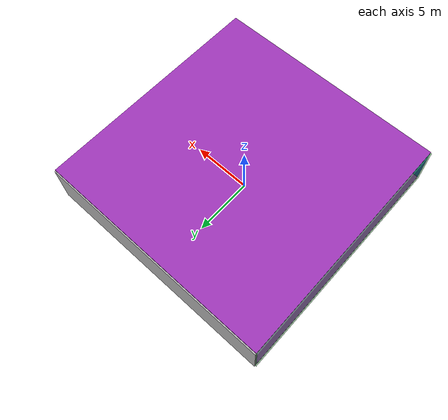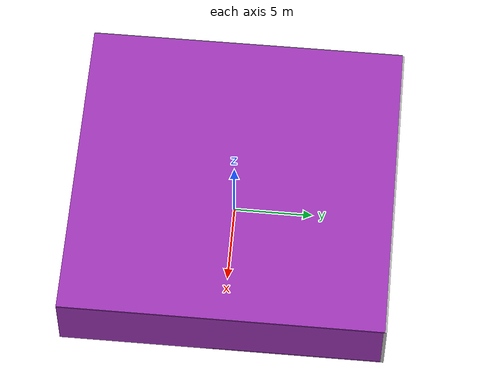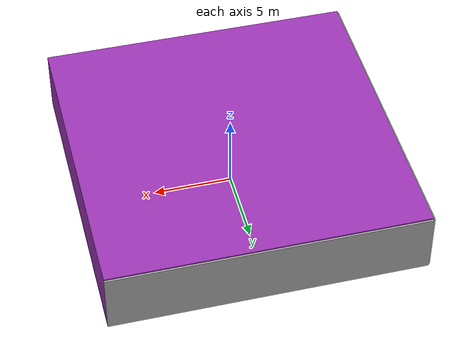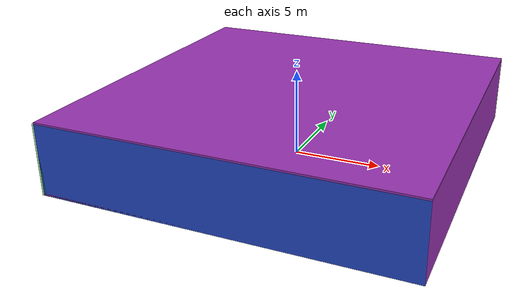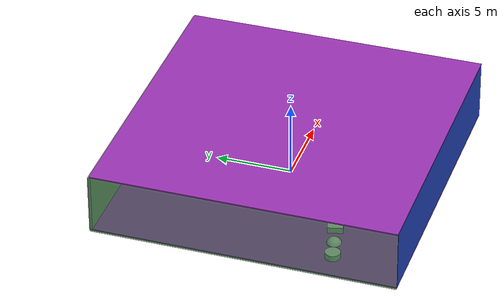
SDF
<sdf version="1.4">
 <world name="default">
  <physics type="ode">
   <max_step_size>0.001</max_step_size>
   <real_time_factor>1</real_time_factor>
   <real_time_update_rate>1000</real_time_update_rate>
   <gravity>0 0 -9.8</gravity>
  </physics>
  <scene><ambient>0.4 0.4 0.4 1</ambient><background>0.7 0.7 0.7 1</background><shadows>1</shadows></scene>
  <model name="Surrounding">
   <static>1</static>
   <link name="Ceiling">
    <collision name="Ceiling_Collision"><geometry><box><size>20 20 0.1</size></box></geometry></collision>
    <visual name="Ceiling_Visual">
     <geometry><box><size>20 20 0.1</size></box></geometry>
     <material>
      <script><uri>file://media/materials/scripts/gazebo.material</uri><name>Gazebo/PurpleGlow</name></script>
     </material>
    </visual>
    <pose>0 0 4.05 0 0 0</pose>
   </link>
   <link name="Wall_South">
    <collision name="Wall_South_Collision">
     <geometry><box><size>20 0 4</size></box></geometry>
     <pose>0 0 2 0 -0 0</pose>
    </collision>
    <visual name="Wall_South_Visual">
     <pose>0 0 2 0 -0 0</pose>
     <geometry><box><size>20 0 4</size></box></geometry>
     <material>
      <script><uri>file://media/materials/scripts/gazebo.material</uri><name>Gazebo/BlueGlow</name></script>
     </material>
    </visual>
    <velocity_decay><linear>0</linear><angular>0</angular></velocity_decay>
    <pose>0 -10 0 0 -0 0</pose>
   </link>
   <link name="Wall_East">
    <collision name="Wall_21_Collision">
     <geometry><box><size>20 0 4</size></box></geometry>
     <pose>0 0 2 0 -0 0</pose>
    </collision>
    <visual name="Wall_21_Visual">
     <pose>0 0 2 0 -0 0</pose>
     <geometry><box><size>20 0 4</size></box></geometry>
     <material>
      <script><uri>file://media/materials/scripts/gazebo.material</uri><name>Gazebo/PurpleGlow</name></script>
     </material>
    </visual>
    <velocity_decay><linear>0</linear><angular>0</angular></velocity_decay>
    <pose>10 0 0 0 -0 1.5708</pose>
   </link>
   <link name="Wall_North">
    <collision name="Wall_22_Collision">
     <geometry><box><size>20 0.2 4</size></box></geometry>
     <pose>0 0 2 0 -0 0</pose>
    </collision>
    <visual name="Wall_22_Visual">
     <pose>0 0 2 0 -0 0</pose>
     <geometry><box><size>20 0.2 4</size></box></geometry>
     <material>
      <script><uri>file://media/materials/scripts/gazebo.material</uri><name>Gazebo/Pioneer2Body</name></script>
     </material>
    </visual>
    <velocity_decay><linear>0</linear><angular>0</angular></velocity_decay>
    <pose>0 10 0 0 -0 0</pose>
   </link>
   <link name="Wall_West">
    <collision name="Wall_23_Collision">
     <geometry><box><size>20 0.2 4</size></box></geometry>
     <pose>0 0 2 0 -0 0</pose>
    </collision>
    <visual name="Wall_23_Visual">
     <pose>0 0 2 0 -0 0</pose>
     <geometry><box><size>20 0.2 4</size></box></geometry>
     <material>
      <script><uri>file://media/materials/scripts/gazebo.material</uri><name>Gazebo/GreenTransparent</name></script>
     </material>
    </visual>
    <velocity_decay><linear>0</linear><angular>0</angular></velocity_decay>
    <pose>-10 0 0 0 0 -1.5708</pose>
   </link>
   <link name="Ground_link">
    <collision name="collision">
     <pose>0 0 .05 0 -0 0</pose>
     <geometry><box><size>20 20 0.1</size></box></geometry>
    </collision>
    <visual name="visual">
     <pose>0 0 .05 0 -0 0</pose>
     <geometry><box><size>20 20 0.1</size></box></geometry>
     <material>
      <script><uri>file://media/materials/scripts/gazebo.material</uri><name>Gazebo/PurpleGlow</name></script>
     </material>
    </visual>
   </link>
   <static>1</static>
  </model>
  <spherical_coordinates>
   <surface_model>EARTH_WGS84</surface_model>
   <latitude_deg>0</latitude_deg>
   <longitude_deg>0</longitude_deg>
   <elevation>0</elevation>
   <heading_deg>0</heading_deg>
  </spherical_coordinates>
  <light name="lightball_0" type="diffuse">
   <diffuse>0.8 0.8 0.8 1</diffuse>
   <specular>0.2 0.2 0.2 1</specular>
   <attenuation>
    <range>100</range>
    <constant>0.7</constant>
    <linear>0.01</linear>
    <quadratic>0.001</quadratic>
   </attenuation>
   <direction>-0.5 0.1 -0.9</direction>
   <pose>3.39816971077 6.62879764587 3.37423313138 0 0 0</pose>
  </light>
  <light name="lightball_1" type="diffuse">
   <diffuse>0.8 0.8 0.8 1</diffuse>
   <specular>0.2 0.2 0.2 1</specular>
   <attenuation>
    <range>100</range>
    <constant>0.7</constant>
    <linear>0.01</linear>
    <quadratic>0.001</quadratic>
   </attenuation>
   <direction>-0.5 0.1 -0.9</direction>
   <pose>3.62670236934 9.78263735048 1.03354704247 0 0 0</pose>
  </light>
  <light name="lightball_2" type="diffuse">
   <diffuse>0.8 0.8 0.8 1</diffuse>
   <specular>0.2 0.2 0.2 1</specular>
   <attenuation>
    <range>100</range>
    <constant>0.7</constant>
    <linear>0.01</linear>
    <quadratic>0.001</quadratic>
   </attenuation>
   <direction>-0.5 0.1 -0.9</direction>
   <pose>-4.76333276732 3.5151038282 1.44666014286 0 0 0</pose>
  </light>
  <light name="lightball_3" type="diffuse">
   <diffuse>0.8 0.8 0.8 1</diffuse>
   <specular>0.2 0.2 0.2 1</specular>
   <attenuation>
    <range>100</range>
    <constant>0.7</constant>
    <linear>0.01</linear>
    <quadratic>0.001</quadratic>
   </attenuation>
   <direction>-0.5 0.1 -0.9</direction>
   <pose>-5.82371461147 2.07297502192 3.4053982732 0 0 0</pose>
  </light>
  <light name="lightball_4" type="diffuse">
   <diffuse>0.8 0.8 0.8 1</diffuse>
   <specular>0.2 0.2 0.2 1</specular>
   <attenuation>
    <range>100</range>
    <constant>0.7</constant>
    <linear>0.01</linear>
    <quadratic>0.001</quadratic>
   </attenuation>
   <direction>-0.5 0.1 -0.9</direction>
   <pose>7.63584428005 6.24169460152 1.91699740143 0 0 0</pose>
  </light>
  <light name="lightball_5" type="diffuse">
   <diffuse>0.8 0.8 0.8 1</diffuse>
   <specular>0.2 0.2 0.2 1</specular>
   <attenuation>
    <range>100</range>
    <constant>0.7</constant>
    <linear>0.01</linear>
    <quadratic>0.001</quadratic>
   </attenuation>
   <direction>-0.5 0.1 -0.9</direction>
   <pose>8.39422913287 -4.25157544856 0.987206766725 0 0 0</pose>
  </light>
  <light name="lightball_6" type="diffuse">
   <diffuse>0.8 0.8 0.8 1</diffuse>
   <specular>0.2 0.2 0.2 1</specular>
   <attenuation>
    <range>100</range>
    <constant>0.7</constant>
    <linear>0.01</linear>
    <quadratic>0.001</quadratic>
   </attenuation>
   <direction>-0.5 0.1 -0.9</direction>
   <pose>-8.91069725163 0.055258405951 3.21296093379 0 0 0</pose>
  </light>
  <light name="lightball_7" type="diffuse">
   <diffuse>0.8 0.8 0.8 1</diffuse>
   <specular>0.2 0.2 0.2 1</specular>
   <attenuation>
    <range>100</range>
    <constant>0.7</constant>
    <linear>0.01</linear>
    <quadratic>0.001</quadratic>
   </attenuation>
   <direction>-0.5 0.1 -0.9</direction>
   <pose>-1.86693883021 -0.66016079264 2.00288445191 0 0 0</pose>
  </light>
  <light name="lightball_8" type="diffuse">
   <diffuse>0.8 0.8 0.8 1</diffuse>
   <specular>0.2 0.2 0.2 1</specular>
   <attenuation>
    <range>100</range>
    <constant>0.7</constant>
    <linear>0.01</linear>
    <quadratic>0.001</quadratic>
   </attenuation>
   <direction>-0.5 0.1 -0.9</direction>
   <pose>-6.6857715436 -6.60720659338 1.18715191252 0 0 0</pose>
  </light>
  <light name="lightball_9" type="diffuse">
   <diffuse>0.8 0.8 0.8 1</diffuse>
   <specular>0.2 0.2 0.2 1</specular>
   <attenuation>
    <range>100</range>
    <constant>0.7</constant>
    <linear>0.01</linear>
    <quadratic>0.001</quadratic>
   </attenuation>
   <direction>-0.5 0.1 -0.9</direction>
   <pose>-0.0824805673546 4.22698929851 1.20969822959 0 0 0</pose>
  </light>
  <light name="lightball_10" type="diffuse">
   <diffuse>0.8 0.8 0.8 1</diffuse>
   <specular>0.2 0.2 0.2 1</specular>
   <attenuation>
    <range>100</range>
    <constant>0.7</constant>
    <linear>0.01</linear>
    <quadratic>0.001</quadratic>
   </attenuation>
   <direction>-0.5 0.1 -0.9</direction>
   <pose>-2.53625719238 6.65758410456 2.39125390934 0 0 0</pose>
  </light>
  <include>
   <uri>model://textured_shapes</uri>
   <pose>-6.73656833621 -4.99456436746 0 0 0 1.80802996745</pose>
  </include>
  <include><uri>model://cabinet</uri><pose>-1.31766490494 1.21490729724 0 0 0 1.64119800387</pose></include>
  <include>
   <uri>model://textured_shapes</uri>
   <pose>1.71890238379 7.48741593411 0 0 0 0.61077560707</pose>
  </include>
 </world>
</sdf>

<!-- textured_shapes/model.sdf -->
<sdf version="1.6">
  <model name="textured_shapes">
    <pose>0 0 0.5 0 0 0</pose>
    <link name="box">
      <pose>0 -1.5 0 0 0 0</pose>
      <collision name="collision">
        <geometry>
          <box>
            <size>1 1 1</size>
          </box>
        </geometry>
      </collision>
      <visual name="visual">
        <geometry>
          <box>
            <size>1 1 1</size>
          </box>
        </geometry>
        <material>
          <script>
            <uri>model://../model_source/models/textured_shapes/materials/scripts</uri>
            <uri>model://../model_source/models/textured_shapes/materials/textures</uri>
            <name>TexturedShape/Squares</name>
          </script>
        </material>
      </visual>
    </link>
    <link name="sphere">
      <collision name="collision">
        <geometry>
          <sphere>
            <radius>0.5</radius>
          </sphere>
        </geometry>
      </collision>
      <visual name="visual">
        <geometry>
          <sphere>
            <radius>0.5</radius>
          </sphere>
        </geometry>
        <material>
          <script>
            <uri>model://../model_source/models/textured_shapes/materials/scripts</uri>
            <uri>model://../model_source/models/textured_shapes/materials/textures</uri>
            <name>TexturedShape/Squares</name>
          </script>
        </material>
      </visual>
    </link>
    <link name="cylinder">
      <pose>0 1.5 0 0 0 0</pose>
      <collision name="collision">
        <geometry>
          <cylinder>
            <radius>0.5</radius>
            <length>1</length>
          </cylinder>
        </geometry>
      </collision>
      <visual name="visual">
        <geometry>
          <cylinder>
            <radius>0.5</radius>
            <length>1</length>
          </cylinder>
        </geometry>
        <material>
          <script>
            <uri>model://../model_source/models/textured_shapes/materials/scripts</uri>
            <uri>model://../model_source/models/textured_shapes/materials/textures</uri>
            <name>TexturedShape/Squares</name>
          </script>
        </material>
      </visual>
    </link>
  </model>
</sdf>

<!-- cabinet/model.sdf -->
<sdf version="1.5">
  <model name="cabinet">
    <static>true</static>
    <link name="cabinet_bottom_plate">
      <inertial>
        <pose>0 0 -1 0 0 0</pose>
        <inertia>
          <ixx>2.050000</ixx>
          <ixy>0</ixy>
          <ixz>0</ixz>
          <iyy>2.050000</iyy>
          <iyz>0</iyz>
          <izz>2.050000</izz>
        </inertia>
        <mass>25.000000</mass>
      </inertial>
      <collision name="cabinet_bottom_plate_geom">
        <pose>0 0 0.010000 0 0 0</pose>
        <geometry>
          <box>
            <size>0.450000 0.450000 0.020000</size>
          </box>
        </geometry>
      </collision>
      <visual name="cabinet_bottom_plate_geom_visual">
        <pose>0 0 0.010000 0 0 0</pose>
        <geometry>
          <box>
            <size>0.450000 0.450000 0.020000</size>
          </box>
        </geometry>
        <material>
          <script>
            <uri>model://media/materials/scripts/gazebo.material</uri>
            <name>Gazebo/Wood</name>
          </script>
        </material>
      </visual>
      <collision name="cabinet_bottom_plate_geom_cabinet_back_plate">
        <pose>0.235000 0 0.510000 0 0 0</pose>
        <geometry>
          <box>
            <size>0.020000 0.450000 1.020000</size>
          </box>
        </geometry>
      </collision>
      <visual name="cabinet_bottom_plate_geom_cabinet_back_plate_visual">
        <pose>0.235000 0 0.510000 0 0 0</pose>
        <geometry>
          <box>
            <size>0.020000 0.450000 1.020000</size>
          </box>
        </geometry>
        <material>
          <script>
            <uri>model://media/materials/scripts/gazebo.material</uri>
            <name>Gazebo/Wood</name>
          </script>
        </material>
      </visual>
      <collision name="cabinet_bottom_plate_geom_cabinet_left_plate">
        <pose>0 0.235000 0.510000 0 0 0</pose>
        <geometry>
          <box>
            <size>0.450000 0.020000 1.020000</size>
          </box>
        </geometry>
      </collision>
      <visual name="cabinet_bottom_plate_geom_cabinet_left_plate_visual">
        <pose>0 0.235000 0.510000 0 0 0</pose>
        <geometry>
          <box>
            <size>0.450000 0.020000 1.020000</size>
          </box>
        </geometry>
        <material>
          <script>
            <uri>model://media/materials/scripts/gazebo.material</uri>
            <name>Gazebo/Wood</name>
          </script>
        </material>
      </visual>
      <collision name="cabinet_bottom_plate_geom_cabinet_middle_plate">
        <pose>0 0 0.510000 0 0 0</pose>
        <geometry>
          <box>
            <size>0.450000 0.450000 0.020000</size>
          </box>
        </geometry>
      </collision>
      <visual name="cabinet_bottom_plate_geom_cabinet_middle_plate_visual">
        <pose>0 0 0.510000 0 0 0</pose>
        <geometry>
          <box>
            <size>0.450000 0.450000 0.020000</size>
          </box>
        </geometry>
        <material>
          <script>
            <uri>model://media/materials/scripts/gazebo.material</uri>
            <name>Gazebo/Wood</name>
          </script>
        </material>
      </visual>
      <collision name="cabinet_bottom_plate_geom_cabinet_right_plate">
        <pose>0 -0.235000 0.510000 0 0 0</pose>
        <geometry>
          <box>
            <size>0.450000 0.020000 1.020000</size>
          </box>
        </geometry>
      </collision>
      <visual name="cabinet_bottom_plate_geom_cabinet_right_plate_visual">
        <pose>0 -0.235000 0.510000 0 0 0</pose>
        <geometry>
          <box>
            <size>0.450000 0.020000 1.020000</size>
          </box>
        </geometry>
        <material>
          <script>
            <uri>model://media/materials/scripts/gazebo.material</uri>
            <name>Gazebo/Wood</name>
          </script>
        </material>
      </visual>
      <collision name="cabinet_bottom_plate_geom_cabinet_top_plate">
        <pose>0 0 1.010000 0 0 0</pose>
        <geometry>
          <box>
            <size>0.450000 0.450000 0.020000</size>
          </box>
        </geometry>
      </collision>
      <visual name="cabinet_bottom_plate_geom_cabinet_top_plate_visual">
        <pose>0 0 1.010000 0 0 0</pose>
        <geometry>
          <box>
            <size>0.450000 0.450000 0.020000</size>
          </box>
        </geometry>
        <material>
          <script>
            <uri>model://media/materials/scripts/gazebo.material</uri>
            <name>Gazebo/Wood</name>
          </script>
        </material>
      </visual>
    </link>
  </model>
</sdf>
